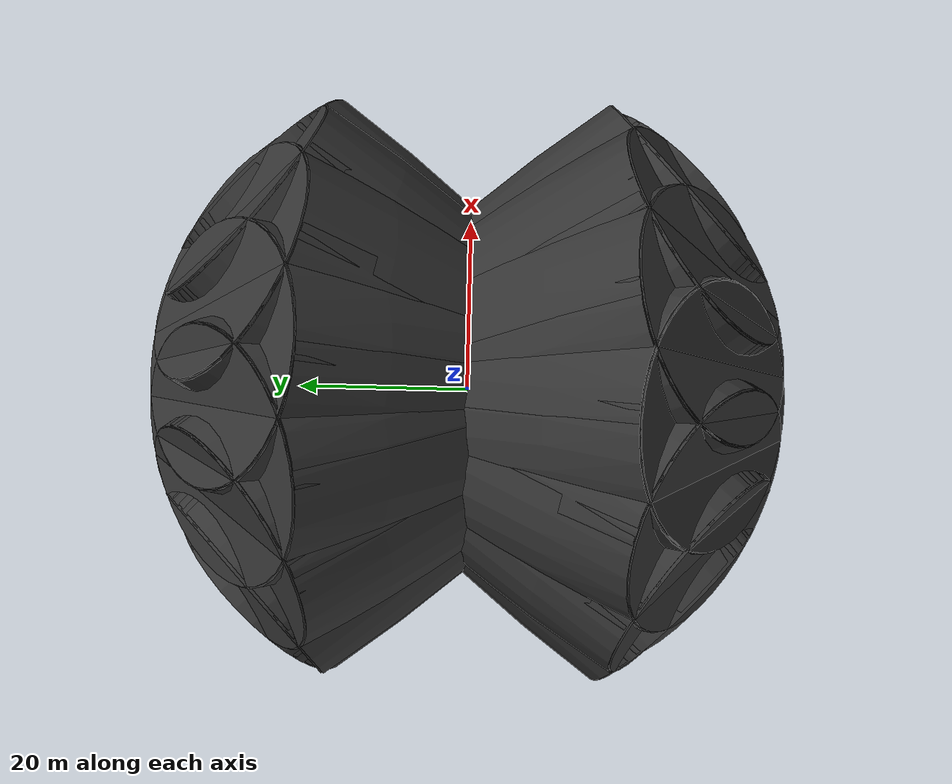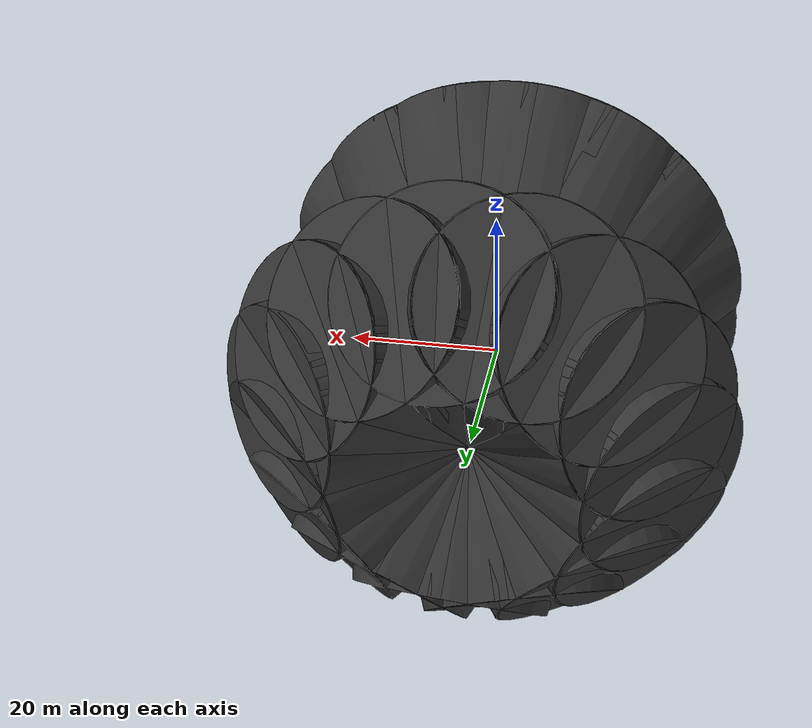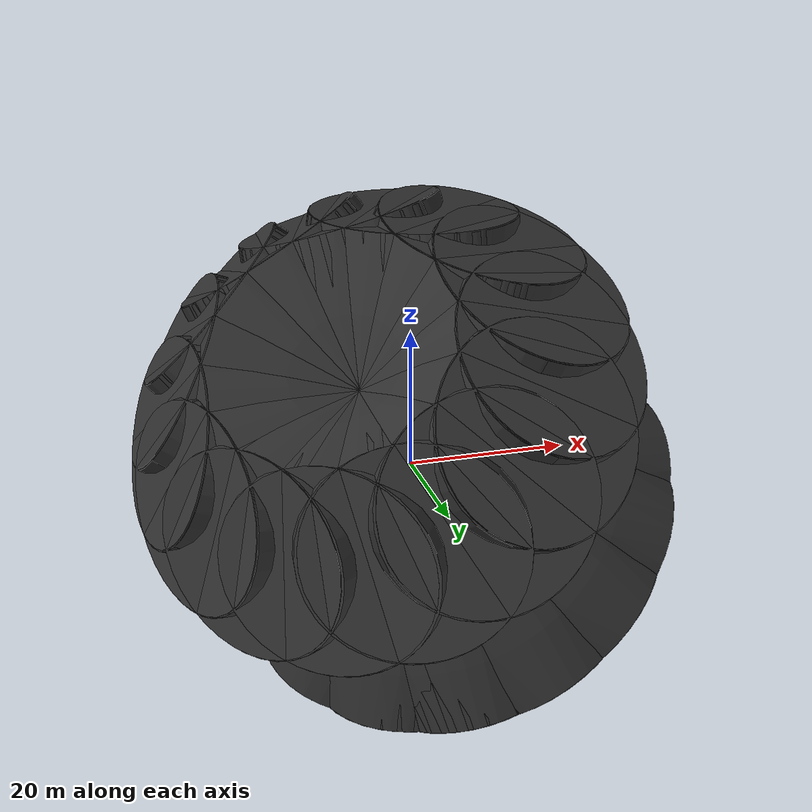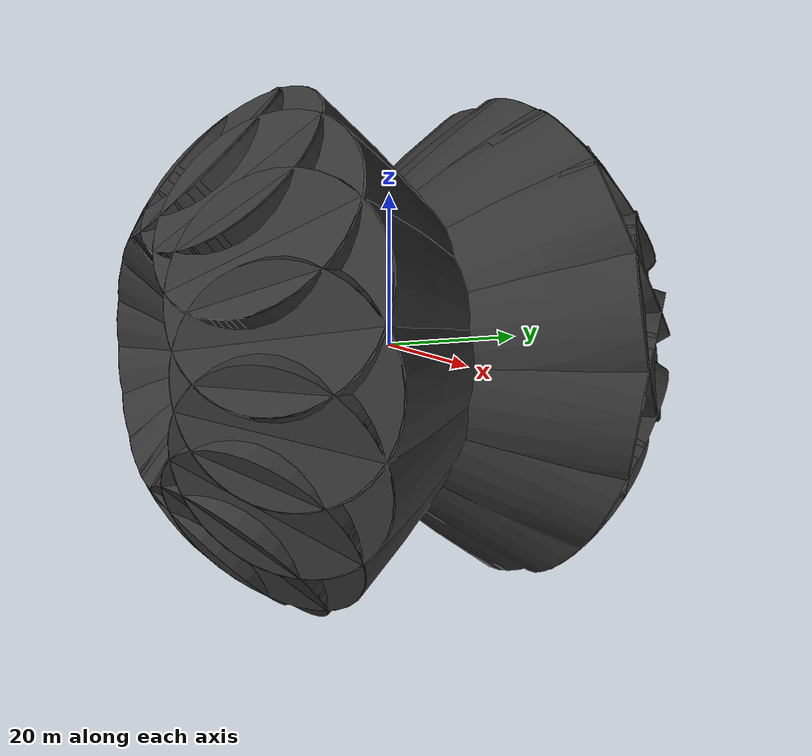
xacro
<?xml version="1.0" ?>
<robot name="mecanum3" xmlns:xacro="http://www.ros.org/wiki/xacro">

  <xacro:include filename="$(find mecanumrover_description)/urdf/materials.xacro" />
  <xacro:include filename="$(find mecanumrover_description)/urdf/mecanum3.gazebo" />
  <xacro:include filename="$(find mecanumrover_description)/urdf/mecanum3_ros2_control.xacro" />

  <xacro:include filename="$(find vs_rover_options_description)/urdf/lrf/tg30_mecanum3.xacro" />

  <!-- Inertial macros -->
  <xacro:macro name="cylinder_inertial" params="mass radius length">
    <mass value="${mass}"/>
    <inertia
      ixx="${((radius*radius)/4 + (length*length)/12)*mass}"
      ixy="0" ixz="0"
      iyy="${((radius*radius)/4 + (length*length)/12)*mass}"
      iyz="0"
      izz="${(mass*radius*radius)/2}" />
  </xacro:macro>

  <!-- Barrel (roller) macros -->
  <xacro:macro name="barrel_rl" params="prefix parent dir rot">
    <joint name="${prefix}_joint" type="continuous">
      <parent link="${parent}"/>
      <child  link="${prefix}_link"/>
      <origin
        xyz="${0.0666389*cos(radians(dir))} ${0.0666389*sin(radians(dir))} 0"
        rpy="${pi/4*rot} 0 ${radians(dir)}"/>
      <axis xyz="0 0 1"/>
      <dynamics damping="0.001" friction="0.0"/>
    </joint>
    <link name="${prefix}_link">
      <visual>
        <geometry>
          <mesh filename="package://mecanumrover_description/meshes/mecanum3/mecanum_barrel.stl"/>
        </geometry>
        <material name="dark_grey"/>
      </visual>
      <collision>
        <geometry>
          <mesh filename="package://mecanumrover_description/meshes/mecanum3/mecanum_barrel.stl"/>
        </geometry>
      </collision>
      <inertial>
        <xacro:cylinder_inertial
          mass="0.01225"
          radius="0.00956"
          length="0.0381"/>
      </inertial>
    </link>
  </xacro:macro>

  <xacro:macro name="barrels_rl" params="prefix parent rot">
    <xacro:barrel_rl prefix="${prefix}_0"  parent="${parent}" dir="0"   rot="${rot}"/>
    <xacro:barrel_rl prefix="${prefix}_1"  parent="${parent}" dir="24"  rot="${rot}"/>
    <xacro:barrel_rl prefix="${prefix}_2"  parent="${parent}" dir="48"  rot="${rot}"/>
    <xacro:barrel_rl prefix="${prefix}_3"  parent="${parent}" dir="72"  rot="${rot}"/>
    <xacro:barrel_rl prefix="${prefix}_4"  parent="${parent}" dir="96"  rot="${rot}"/>
    <xacro:barrel_rl prefix="${prefix}_5"  parent="${parent}" dir="120" rot="${rot}"/>
    <xacro:barrel_rl prefix="${prefix}_6"  parent="${parent}" dir="144" rot="${rot}"/>
    <xacro:barrel_rl prefix="${prefix}_7"  parent="${parent}" dir="168" rot="${rot}"/>
    <xacro:barrel_rl prefix="${prefix}_8"  parent="${parent}" dir="192" rot="${rot}"/>
    <xacro:barrel_rl prefix="${prefix}_9"  parent="${parent}" dir="216" rot="${rot}"/>
    <xacro:barrel_rl prefix="${prefix}_10" parent="${parent}" dir="240" rot="${rot}"/>
    <xacro:barrel_rl prefix="${prefix}_11" parent="${parent}" dir="264" rot="${rot}"/>
    <xacro:barrel_rl prefix="${prefix}_12" parent="${parent}" dir="288" rot="${rot}"/>
    <xacro:barrel_rl prefix="${prefix}_13" parent="${parent}" dir="312" rot="${rot}"/>
    <xacro:barrel_rl prefix="${prefix}_14" parent="${parent}" dir="336" rot="${rot}"/>
  </xacro:macro>

  <xacro:macro name="attach_mecanum_rollers" params="wheel_prefix wheel_link rot">
    <xacro:barrels_rl
      prefix="${wheel_prefix}_barrel"
      parent="${wheel_link}"
      rot="${rot}"/>
  </xacro:macro>

  <!-- Arm link macro -->
  <xacro:macro name="mecanum_arm_link" params="name">
    <link name="${name}">
      <inertial>
        <origin xyz="0.001000 -0.054014 1.236051e-21"/>
        <mass value="0.5"/>
        <inertia ixx="7.442105e-04" iyy="2.141603e-04" izz="5.341336e-04" ixy="-4.944204e-21" ixz="1.236051e-21" iyz="1.089631e-04"/>
      </inertial>
      <visual>
        <geometry>
          <mesh filename="package://mecanumrover_description/meshes/mecanum3/arms.stl"
                scale="0.001 0.001 0.001"/>
        </geometry>
        <material name="silver"/>
      </visual>
      <collision>
        <geometry>
          <mesh filename="package://mecanumrover_description/meshes/mecanum3/arms.stl"
                scale="0.001 0.001 0.001"/>
        </geometry>
      </collision>
    </link>
  </xacro:macro>

  <!-- Wheel link macros
       Collision uses the actual STL mesh so barrel rollers are the outermost
       contact geometry (no separate cylinder approximation needed). -->
  <xacro:macro name="mecanum_wheel_link" params="name">
    <link name="${name}">
      <inertial>
        <origin xyz="0 0 0"/>
        <mass value="0.88"/>
        <inertia ixx="7.666816e-04" iyy="7.666974e-04" izz="8.946765e-04" ixy="2.614197e-11" ixz="1.015151e-09" iyz="-2.439097e-09"/>
      </inertial>
      <visual>
        <geometry>
          <mesh filename="package://mecanumrover_description/meshes/mecanum3/mecanum_wheel.stl"
                scale="0.001 0.001 0.001"/>
        </geometry>
        <material name="silver"/>
      </visual>
      <collision>
        <geometry>
          <mesh filename="package://mecanumrover_description/meshes/mecanum3/mecanum_wheel.stl"
                scale="0.001 0.001 0.001"/>
        </geometry>
      </collision>
    </link>
  </xacro:macro>

  <xacro:macro name="mecanum_wheel_rev_link" params="name">
    <link name="${name}">
      <inertial>
        <origin xyz="0.000657 0 0.007742"/>
        <mass value="0.88"/>
        <inertia ixx="7.655818e-04" iyy="7.655769e-04" izz="8.900386e-04" ixy="-6.106217e-09" ixz="1.064093e-09" iyz="-2.991811e-09"/>
      </inertial>
      <visual>
        <geometry>
          <mesh filename="package://mecanumrover_description/meshes/mecanum3/mecanum_wheel_rev.stl"
                scale="0.001 0.001 0.001"/>
        </geometry>
        <material name="silver"/>
      </visual>
      <collision>
        <geometry>
          <mesh filename="package://mecanumrover_description/meshes/mecanum3/mecanum_wheel_rev.stl"
                scale="0.001 0.001 0.001"/>
        </geometry>
      </collision>
    </link>
  </xacro:macro>

  <!-- Wheel joint macro -->
  <xacro:macro name="mecanum_wheel_joint" params="name parent child xyz rpy axis_z">
    <joint name="${name}" type="continuous">
      <parent link="${parent}"/>
      <child link="${child}"/>
      <origin xyz="${xyz}" rpy="${rpy}"/>
      <axis xyz="0 0 ${axis_z}"/>
      <limit effort="2500.0" velocity="20.0"/>
      <dynamics damping="0.1" friction="0.0"/>
    </joint>
  </xacro:macro>

  <!-- Base -->
  <link name="base_footprint"/>

  <joint name="base_joint" type="fixed">
    <parent link="base_footprint"/>
    <child link="base_link"/>
    <origin xyz="0 0 0" rpy="0 0 -1.5708"/>
  </joint>

  <link name="base_link">
    <inertial>
      <origin xyz="0.000129 -0.001817 0.110883"/>
      <mass value="20"/>
      <inertia ixx="1.346868e-01" iyy="4.468661e-02" izz="1.499091e-01" ixy="3.076527e-04" ixz="-2.931603e-05" iyz="2.763693e-05"/>
    </inertial>
    <visual>
      <geometry>
        <mesh filename="package://mecanumrover_description/meshes/mecanum3/base_link.stl"
              scale="0.001 0.001 0.001"/>
      </geometry>
      <material name="silver"/>
    </visual>
    <collision>
      <geometry>
        <mesh filename="package://mecanumrover_description/meshes/mecanum3/base_link.stl"
              scale="0.001 0.001 0.001"/>
      </geometry>
    </collision>
  </link>

  <!-- Arms -->
  <xacro:mecanum_arm_link name="front_left_arm"/>
  <xacro:mecanum_arm_link name="front_right_arm"/>
  <xacro:mecanum_arm_link name="back_left_arm"/>
  <xacro:mecanum_arm_link name="back_right_arm"/>

  <!-- Suspension joints (fixed: eliminates oscillation that caused tipping) -->
  <joint name="front_left_suspension_joint" type="fixed">
    <parent link="base_link"/>
    <child link="front_left_arm"/>
    <origin xyz="-0.085 0.020 0.076" rpy="0 0 ${radians(180)}"/>
  </joint>

  <joint name="front_right_suspension_joint" type="fixed">
    <parent link="base_link"/>
    <child link="front_right_arm"/>
    <origin xyz="0.085 0.020 0.076" rpy="0 0 ${radians(180)}"/>
  </joint>

  <joint name="back_left_suspension_joint" type="fixed">
    <parent link="base_link"/>
    <child link="back_left_arm"/>
    <origin xyz="-0.085 -0.020 0.076" rpy="0 0 0"/>
  </joint>

  <joint name="back_right_suspension_joint" type="fixed">
    <parent link="base_link"/>
    <child link="back_right_arm"/>
    <origin xyz="0.085 -0.020 0.076" rpy="0 0 0"/>
  </joint>

  <!-- Wheels -->
  <xacro:mecanum_wheel_rev_link name="front_left_wheel_1"/>
  <xacro:mecanum_wheel_link     name="front_right_wheel_1"/>
  <xacro:mecanum_wheel_link     name="back_left_wheel_1"/>
  <xacro:mecanum_wheel_rev_link name="back_right_wheel_1"/>

  <xacro:mecanum_wheel_joint
    name="front_left_joint"
    parent="front_left_arm"
    child="front_left_wheel_1"
    xyz="0.03 -0.100 0"
    rpy="0 ${radians(-270)} 0"
    axis_z="1"/>

  <xacro:mecanum_wheel_joint
    name="front_right_joint"
    parent="front_right_arm"
    child="front_right_wheel_1"
    xyz="-0.03 -0.100 0"
    rpy="0 ${radians(-90)} 0"
    axis_z="-1"/>

  <xacro:mecanum_wheel_joint
    name="back_left_joint"
    parent="back_left_arm"
    child="back_left_wheel_1"
    xyz="-0.03 -0.100 0"
    rpy="0 ${radians(270)} 0"
    axis_z="1"/>

  <xacro:mecanum_wheel_joint
    name="back_right_joint"
    parent="back_right_arm"
    child="back_right_wheel_1"
    xyz="0.03 -0.100 0"
    rpy="0 ${radians(90)} 0"
    axis_z="-1"/>

  <xacro:attach_mecanum_rollers
    wheel_prefix="front_left"
    wheel_link="front_left_wheel_1"
    rot="-1"/>

  <xacro:attach_mecanum_rollers
    wheel_prefix="front_right"
    wheel_link="front_right_wheel_1"
    rot="1"/>

  <xacro:attach_mecanum_rollers
    wheel_prefix="back_left"
    wheel_link="back_left_wheel_1"
    rot="1"/>

  <xacro:attach_mecanum_rollers
    wheel_prefix="back_right"
    wheel_link="back_right_wheel_1"
    rot="-1"/>

</robot>

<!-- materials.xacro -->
<robot name="materials" xmlns:xacro="http://www.ros.org/wiki/xacro">

  <material name="silver">
    <color rgba="0.800 0.800 0.800 1.000" />
  </material>

  <material name="dark_silver">
    <color rgba="0.400 0.400 0.400 1.000" />
  </material>

  <material name="dark_grey">
    <color rgba="0.200 0.200 0.200 1.000" />
  </material>

  <material name="black">
    <color rgba="0.100 0.100 0.100 1.000" />
  </material>

  <material name="cream">
    <color rgba="0.9725 0.8941 0.6941 1.0" />
  </material>

</robot>

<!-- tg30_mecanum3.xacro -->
<robot name="lrf_tg30_mecanum3" xmlns:xacro="http://ros.org/wiki/xacro">
  <xacro:include filename="$(find vs_rover_options_description)/urdf/lrf/tg30_mecanum3.gazebo" />

  <xacro:property name="tg30_lrf_front_x_offset" value="0.0" />
  <xacro:property name="tg30_lrf_front_y_offset" value="0.2000" />
  <xacro:property name="tg30_lrf_front_z_offset" value="0.1959" />
  <xacro:property name="tg30_lrf_back_x_offset" value="0.0" />
  <xacro:property name="tg30_lrf_back_y_offset" value="-0.2000" />
  <xacro:property name="tg30_lrf_back_z_offset" value="0.1959" />
  <xacro:property name="tg30_center_of_mass_x" value="-0.004299" />
  <xacro:property name="tg30_center_of_mass_y" value="-0.000337" />
  <xacro:property name="tg30_center_of_mass_z" value="-0.018037" />

  <joint name="front_lrf_joint" type="fixed">
    <parent link="base_link" />
    <child link="front_lrf_link" />
    <origin xyz="${tg30_lrf_front_x_offset} ${tg30_lrf_front_y_offset} ${tg30_lrf_front_z_offset}" rpy="0 0 ${pi/2}" />
  </joint>

  <link name="front_lrf_link">
    <inertial>
      <origin xyz="${tg30_center_of_mass_x} ${tg30_center_of_mass_y} ${tg30_center_of_mass_z}" rpy="0 0 0" />
      <mass value="0.200" />
      <inertia ixx="0.0001205" iyy="0.0001561" izz="0.0001977"
        ixy="0.00" iyz="0.00"
        ixz="0.00" />
    </inertial>
    <visual>
      <origin xyz="0 0 0" rpy="0 0 0" />
      <geometry>
        <mesh filename="package://vs_rover_options_description/meshes/lrf/tg30.stl" scale="0.001 0.001 0.001" />
      </geometry>
      <material name="black" />
    </visual>
    <collision>
      <origin xyz="0 0 0" rpy="0 0 0" />
      <geometry>
        <mesh filename="package://vs_rover_options_description/meshes/lrf/tg30.stl" scale="0.001 0.001 0.001" />
      </geometry>
    </collision>
  </link>

  <joint name="back_lrf_joint" type="fixed">
    <parent link="base_link" />
    <child link="back_lrf_link" />
    <origin xyz="${tg30_lrf_back_x_offset} ${tg30_lrf_back_y_offset} ${tg30_lrf_back_z_offset}" rpy="0 0 ${-pi/2}" />
  </joint>

  <link name="back_lrf_link">
    <inertial>
      <origin xyz="${tg30_center_of_mass_x} ${tg30_center_of_mass_y} ${tg30_center_of_mass_z}" rpy="0 0 0" />
      <mass value="0.200" />
      <inertia ixx="0.0001205" iyy="0.0001561" izz="0.0001977"
        ixy="0.00" iyz="0.00"
        ixz="0.00" />
    </inertial>
    <visual>
      <origin xyz="0 0 0" rpy="0 0 0" />
      <geometry>
        <mesh filename="package://vs_rover_options_description/meshes/lrf/tg30.stl" scale="0.001 0.001 0.001" />
      </geometry>
      <material name="black" />
    </visual>
    <collision>
      <origin xyz="0 0 0" rpy="0 0 0" />
      <geometry>
        <mesh filename="package://vs_rover_options_description/meshes/lrf/tg30.stl" scale="0.001 0.001 0.001" />
      </geometry>
    </collision>
  </link>

</robot>
